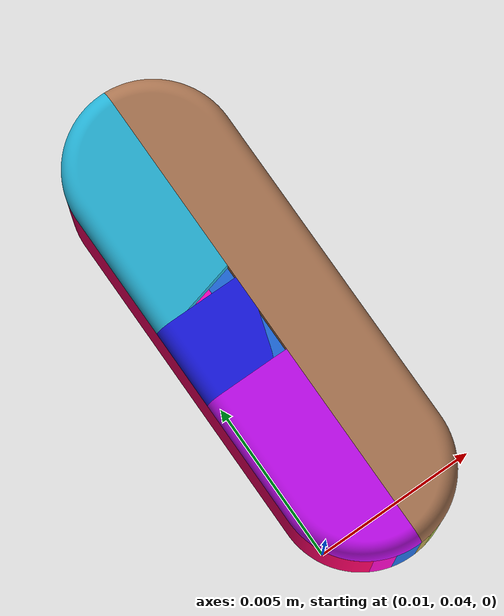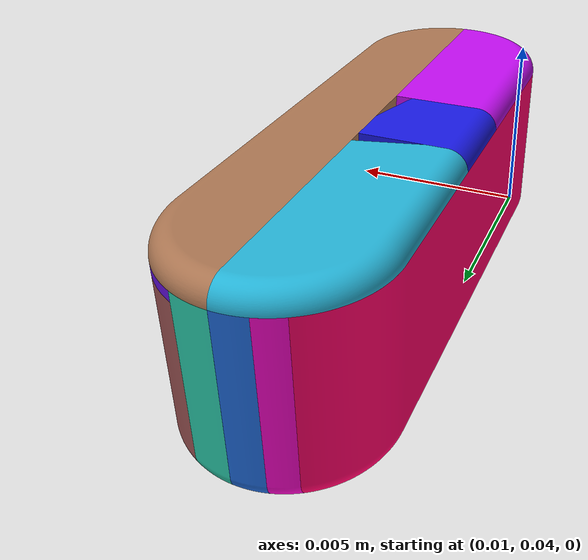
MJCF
<!-- mass 와 inertia 가 없네.. -->
<mujoco>
    <asset>
        <mesh name="Tablet" file="/home/seongjin/Desktop/Seongjin/genesis_simulation_on_linux/My_asset/Tablet/Tablet.obj" scale="0.001 0.001 0.001"/>
        <mesh name="Tablet_collision_(1)" file="/home/seongjin/Desktop/Seongjin/genesis_simulation_on_linux/My_asset/Tablet/Tablet_collision_(1).obj" scale="0.001 0.001 0.001"/>
        <mesh name="Tablet_collision_(10)" file="/home/seongjin/Desktop/Seongjin/genesis_simulation_on_linux/My_asset/Tablet/Tablet_collision_(10).obj" scale="0.001 0.001 0.001"/>
        <mesh name="Tablet_collision_(11)" file="/home/seongjin/Desktop/Seongjin/genesis_simulation_on_linux/My_asset/Tablet/Tablet_collision_(11).obj" scale="0.001 0.001 0.001"/>
        <mesh name="Tablet_collision_(12)" file="/home/seongjin/Desktop/Seongjin/genesis_simulation_on_linux/My_asset/Tablet/Tablet_collision_(12).obj" scale="0.001 0.001 0.001"/>
        <mesh name="Tablet_collision_(13)" file="/home/seongjin/Desktop/Seongjin/genesis_simulation_on_linux/My_asset/Tablet/Tablet_collision_(13).obj" scale="0.001 0.001 0.001"/>
        <mesh name="Tablet_collision_(14)" file="/home/seongjin/Desktop/Seongjin/genesis_simulation_on_linux/My_asset/Tablet/Tablet_collision_(14).obj" scale="0.001 0.001 0.001"/>
        <mesh name="Tablet_collision_(15)" file="/home/seongjin/Desktop/Seongjin/genesis_simulation_on_linux/My_asset/Tablet/Tablet_collision_(15).obj" scale="0.001 0.001 0.001"/>
        <mesh name="Tablet_collision_(2)" file="/home/seongjin/Desktop/Seongjin/genesis_simulation_on_linux/My_asset/Tablet/Tablet_collision_(2).obj" scale="0.001 0.001 0.001"/>
        <mesh name="Tablet_collision_(3)" file="/home/seongjin/Desktop/Seongjin/genesis_simulation_on_linux/My_asset/Tablet/Tablet_collision_(3).obj" scale="0.001 0.001 0.001"/>
        <mesh name="Tablet_collision_(4)" file="/home/seongjin/Desktop/Seongjin/genesis_simulation_on_linux/My_asset/Tablet/Tablet_collision_(4).obj" scale="0.001 0.001 0.001"/>
        <mesh name="Tablet_collision_(5)" file="/home/seongjin/Desktop/Seongjin/genesis_simulation_on_linux/My_asset/Tablet/Tablet_collision_(5).obj" scale="0.001 0.001 0.001"/>
        <mesh name="Tablet_collision_(6)" file="/home/seongjin/Desktop/Seongjin/genesis_simulation_on_linux/My_asset/Tablet/Tablet_collision_(6).obj" scale="0.001 0.001 0.001"/>
        <mesh name="Tablet_collision_(7)" file="/home/seongjin/Desktop/Seongjin/genesis_simulation_on_linux/My_asset/Tablet/Tablet_collision_(7).obj" scale="0.001 0.001 0.001"/>
        <mesh name="Tablet_collision_(8)" file="/home/seongjin/Desktop/Seongjin/genesis_simulation_on_linux/My_asset/Tablet/Tablet_collision_(8).obj" scale="0.001 0.001 0.001"/>
        <mesh name="Tablet_collision_(9)" file="/home/seongjin/Desktop/Seongjin/genesis_simulation_on_linux/My_asset/Tablet/Tablet_collision_(9).obj" scale="0.001 0.001 0.001"/>
    </asset>
    <worldbody>
        <body name="Tablet">
            <joint type = "free"/>
            <geom rgba="0.675 0.465 0.325 1" type="mesh" mesh="Tablet_collision_(1)"/>

            <geom rgba="0.700 0.620 0.300 1" type="mesh" mesh="Tablet_collision_(10)"/>

            <geom rgba="0.635 0.725 0.275 1" type="mesh" mesh="Tablet_collision_(11)"/>

            <geom rgba="0.450 0.750 0.250 1" type="mesh" mesh="Tablet_collision_(12)"/>

            <geom rgba="0.225 0.775 0.225 1" type="mesh" mesh="Tablet_collision_(13)"/>

            <geom rgba="0.200 0.800 0.440 1" type="mesh" mesh="Tablet_collision_(14)"/>

            <geom rgba="0.175 0.825 0.695 1" type="mesh" mesh="Tablet_collision_(15)"/>

            <geom rgba="0.150 0.710 0.850 1" type="mesh" mesh="Tablet_collision_(2)"/>

            <geom rgba="0.125 0.425 0.875 1" type="mesh" mesh="Tablet_collision_(3)"/>

            <geom rgba="0.100 0.100 0.900 1" type="mesh" mesh="Tablet_collision_(4)"/>

            <geom rgba="0.415 0.075 0.925 1" type="mesh" mesh="Tablet_collision_(5)"/>

            <geom rgba="0.770 0.050 0.950 1" type="mesh" mesh="Tablet_collision_(6)"/>

            <geom rgba="0.975 0.025 0.785 1" type="mesh" mesh="Tablet_collision_(7)"/>

            <geom rgba="1.000 0.000 0.400 1" type="mesh" mesh="Tablet_collision_(8)"/>

        </body>

        <body name="segment">
            <joint type = "free"/>
            <geom rgba="0.650 0.350 0.350 1" type="mesh" mesh="Tablet_collision_(9)"/>
        </body>
    </worldbody>
</mujoco>
